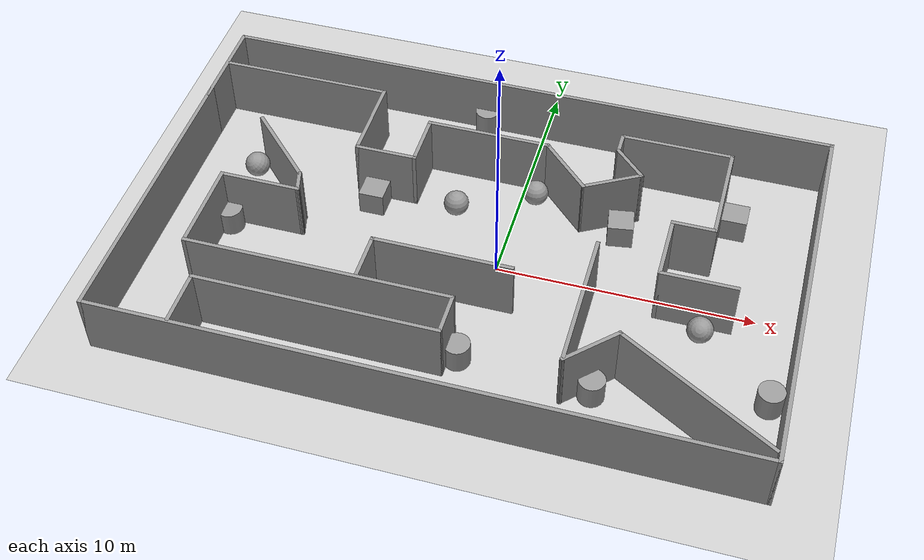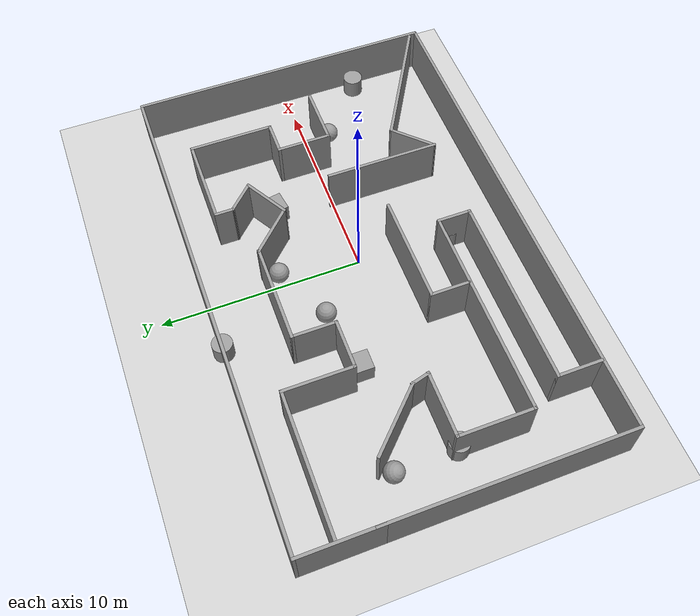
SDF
<sdf version="1.7">
 <world name="default">
  <light name="sun" type="directional">
   <pose>0 0 10 0 -0 0</pose>
   <diffuse>0.8 0.8 0.8 1</diffuse>
   <specular>0.2 0.2 0.2 1</specular>
   <attenuation>
    <range>1000</range>
    <constant>0.9</constant>
    <linear>0.01</linear>
    <quadratic>0.001</quadratic>
   </attenuation>
   <direction>-0.5 0.1 -0.9</direction>
   <spot><inner_angle>0</inner_angle><outer_angle>0</outer_angle><falloff>0</falloff></spot>
  </light>
  <model name="ground_plane">
   <static>1</static>
   <link name="link">
    <collision name="collision">
     <geometry><plane><normal>0 0 1</normal><size>100 100</size></plane></geometry>
     <surface>
      <contact><collide_bitmask>65535</collide_bitmask></contact>
      <friction><ode><mu>100</mu><mu2>50</mu2></ode></friction>
     </surface>
    </collision>
    <visual name="visual">
     <cast_shadows>0</cast_shadows>
     <geometry><plane><normal>0 0 1</normal><size>100 100</size></plane></geometry>
     <material>
      <script><uri>file://media/materials/scripts/gazebo.material</uri><name>Gazebo/Grey</name></script>
     </material>
    </visual>
   </link>
  </model>
  <physics type="ode">
   <max_step_size>0.01</max_step_size>
   <real_time_factor>1</real_time_factor>
   <real_time_update_rate>100</real_time_update_rate>
  </physics>
  <gravity>0 0 -9.8</gravity>
  <magnetic_field>6e-06 2.3e-05 -4.2e-05</magnetic_field>
  <atmosphere type="adiabatic"/>
  <scene><ambient>0.4 0.4 0.4 1</ambient><background>0.7 0.7 0.7 1</background><shadows>1</shadows></scene>
  <spherical_coordinates>
   <surface_model>EARTH_WGS84</surface_model>
   <latitude_deg>0</latitude_deg>
   <longitude_deg>0</longitude_deg>
   <elevation>0</elevation>
   <heading_deg>0</heading_deg>
  </spherical_coordinates>
  <model name="best3">
   <pose>-0.875002 0.033163 0 0 -0 0</pose>
   <link name="Wall_1">
    <collision name="Wall_1_Collision">
     <geometry><box><size>12 0.15 2.5</size></box></geometry>
     <pose>0 0 1.25 0 -0 0</pose>
    </collision>
    <visual name="Wall_1_Visual">
     <pose>0 0 1.25 0 -0 0</pose>
     <geometry><box><size>12 0.15 2.5</size></box></geometry>
     <material>
      <script><uri>file://media/materials/scripts/gazebo.material</uri><name>Gazebo/Grey</name></script>
      <ambient>1 1 1 1</ambient>
     </material>
     <meta><layer>0</layer></meta>
    </visual>
    <pose>-12.425 -1.75 0 0 -0 -1.5708</pose>
   </link>
   <link name="Wall_10">
    <collision name="Wall_10_Collision">
     <geometry><box><size>2.25 0.15 2.5</size></box></geometry>
     <pose>0 0 1.25 0 -0 0</pose>
    </collision>
    <visual name="Wall_10_Visual">
     <pose>0 0 1.25 0 -0 0</pose>
     <geometry><box><size>2.25 0.15 2.5</size></box></geometry>
     <material>
      <script><uri>file://media/materials/scripts/gazebo.material</uri><name>Gazebo/Grey</name></script>
      <ambient>1 1 1 1</ambient>
     </material>
     <meta><layer>0</layer></meta>
    </visual>
    <pose>-3.19458 3.6088 0 0 -0 1.5708</pose>
   </link>
   <link name="Wall_11">
    <collision name="Wall_11_Collision">
     <geometry><box><size>5 0.15 2.5</size></box></geometry>
     <pose>0 0 1.25 0 -0 0</pose>
    </collision>
    <visual name="Wall_11_Visual">
     <pose>0 0 1.25 0 -0 0</pose>
     <geometry><box><size>5 0.15 2.5</size></box></geometry>
     <material>
      <script><uri>file://media/materials/scripts/gazebo.material</uri><name>Gazebo/Grey</name></script>
      <ambient>1 1 1 1</ambient>
     </material>
     <meta><layer>0</layer></meta>
    </visual>
    <pose>-0.769583 4.6588 0 0 -0 0</pose>
   </link>
   <link name="Wall_12">
    <collision name="Wall_12_Collision">
     <geometry><box><size>2.75 0.15 2.5</size></box></geometry>
     <pose>0 0 1.25 0 -0 0</pose>
    </collision>
    <visual name="Wall_12_Visual">
     <pose>0 0 1.25 0 -0 0</pose>
     <geometry><box><size>2.75 0.15 2.5</size></box></geometry>
     <material>
      <script><uri>file://media/materials/scripts/gazebo.material</uri><name>Gazebo/Grey</name></script>
      <ambient>1 1 1 1</ambient>
     </material>
     <meta><layer>0</layer></meta>
    </visual>
    <pose>2.57466 3.73956 0 0 -0 -0.785398</pose>
   </link>
   <link name="Wall_13">
    <collision name="Wall_13_Collision">
     <geometry><box><size>2.5 0.15 2.5</size></box></geometry>
     <pose>0 0 1.25 0 -0 0</pose>
    </collision>
    <visual name="Wall_13_Visual">
     <pose>0 0 1.25 0 -0 0</pose>
     <geometry><box><size>2.5 0.15 2.5</size></box></geometry>
     <material>
      <script><uri>file://media/materials/scripts/gazebo.material</uri><name>Gazebo/Grey</name></script>
      <ambient>1 1 1 1</ambient>
     </material>
     <meta><layer>0</layer></meta>
    </visual>
    <pose>4.51147 3.40782 0 0 -0 0.523599</pose>
   </link>
   <link name="Wall_14">
    <collision name="Wall_14_Collision">
     <geometry><box><size>1.75 0.15 2.5</size></box></geometry>
     <pose>0 0 1.25 0 -0 0</pose>
    </collision>
    <visual name="Wall_14_Visual">
     <pose>0 0 1.25 0 -0 0</pose>
     <geometry><box><size>1.75 0.15 2.5</size></box></geometry>
     <material>
      <script><uri>file://media/materials/scripts/gazebo.material</uri><name>Gazebo/Grey</name></script>
      <ambient>1 1 1 1</ambient>
     </material>
     <meta><layer>0</layer></meta>
    </visual>
    <pose>4.96337 4.561 0 0 -0 2.35619</pose>
   </link>
   <link name="Wall_15">
    <collision name="Wall_15_Collision">
     <geometry><box><size>1 0.15 2.5</size></box></geometry>
     <pose>0 0 1.25 0 -0 0</pose>
    </collision>
    <visual name="Wall_15_Visual">
     <pose>0 0 1.25 0 -0 0</pose>
     <geometry><box><size>1 0.15 2.5</size></box></geometry>
     <material>
      <script><uri>file://media/materials/scripts/gazebo.material</uri><name>Gazebo/Grey</name></script>
      <ambient>1 1 1 1</ambient>
     </material>
     <meta><layer>0</layer></meta>
    </visual>
    <pose>4.39768 5.55169 0 0 -0 1.5708</pose>
   </link>
   <link name="Wall_16">
    <collision name="Wall_16_Collision">
     <geometry><box><size>4.5 0.15 2.5</size></box></geometry>
     <pose>0 0 1.25 0 -0 0</pose>
    </collision>
    <visual name="Wall_16_Visual">
     <pose>0 0 1.25 0 -0 0</pose>
     <geometry><box><size>4.5 0.15 2.5</size></box></geometry>
     <material>
      <script><uri>file://media/materials/scripts/gazebo.material</uri><name>Gazebo/Grey</name></script>
      <ambient>1 1 1 1</ambient>
     </material>
     <meta><layer>0</layer></meta>
    </visual>
    <pose>6.57268 5.97669 0 0 -0 0</pose>
   </link>
   <link name="Wall_17">
    <collision name="Wall_17_Collision">
     <geometry><box><size>4.25 0.15 2.5</size></box></geometry>
     <pose>0 0 1.25 0 -0 0</pose>
    </collision>
    <visual name="Wall_17_Visual">
     <pose>0 0 1.25 0 -0 0</pose>
     <geometry><box><size>4.25 0.15 2.5</size></box></geometry>
     <material>
      <script><uri>file://media/materials/scripts/gazebo.material</uri><name>Gazebo/Grey</name></script>
      <ambient>1 1 1 1</ambient>
     </material>
     <meta><layer>0</layer></meta>
    </visual>
    <pose>8.74768 3.92669 0 0 -0 -1.5708</pose>
   </link>
   <link name="Wall_18">
    <collision name="Wall_18_Collision">
     <geometry><box><size>1.75 0.15 2.5</size></box></geometry>
     <pose>0 0 1.25 0 -0 0</pose>
    </collision>
    <visual name="Wall_18_Visual">
     <pose>0 0 1.25 0 -0 0</pose>
     <geometry><box><size>1.75 0.15 2.5</size></box></geometry>
     <material>
      <script><uri>file://media/materials/scripts/gazebo.material</uri><name>Gazebo/Grey</name></script>
      <ambient>1 1 1 1</ambient>
     </material>
     <meta><layer>0</layer></meta>
    </visual>
    <pose>7.94768 1.87669 0 0 -0 3.14159</pose>
   </link>
   <link name="Wall_19">
    <collision name="Wall_19_Collision">
     <geometry><box><size>2.75 0.15 2.5</size></box></geometry>
     <pose>0 0 1.25 0 -0 0</pose>
    </collision>
    <visual name="Wall_19_Visual">
     <pose>0 0 1.25 0 -0 0</pose>
     <geometry><box><size>2.75 0.15 2.5</size></box></geometry>
     <material>
      <script><uri>file://media/materials/scripts/gazebo.material</uri><name>Gazebo/Grey</name></script>
      <ambient>1 1 1 1</ambient>
     </material>
     <meta><layer>0</layer></meta>
    </visual>
    <pose>7.14768 0.576691 0 0 -0 -1.5708</pose>
   </link>
   <link name="Wall_2">
    <collision name="Wall_2_Collision">
     <geometry><box><size>25 0.15 2.5</size></box></geometry>
     <pose>0 0 1.25 0 -0 0</pose>
    </collision>
    <visual name="Wall_2_Visual">
     <pose>0 0 1.25 0 -0 0</pose>
     <geometry><box><size>25 0.15 2.5</size></box></geometry>
     <material>
      <script><uri>file://media/materials/scripts/gazebo.material</uri><name>Gazebo/Grey</name></script>
      <ambient>1 1 1 1</ambient>
     </material>
     <meta><layer>0</layer></meta>
    </visual>
    <pose>-0 -7.675 0 0 -0 0</pose>
   </link>
   <link name="Wall_20">
    <collision name="Wall_20_Collision">
     <geometry><box><size>3 0.15 2.5</size></box></geometry>
     <pose>0 0 1.25 0 -0 0</pose>
    </collision>
    <visual name="Wall_20_Visual">
     <pose>0 0 1.25 0 -0 0</pose>
     <geometry><box><size>3 0.15 2.5</size></box></geometry>
     <material>
      <script><uri>file://media/materials/scripts/gazebo.material</uri><name>Gazebo/Grey</name></script>
      <ambient>1 1 1 1</ambient>
     </material>
     <meta><layer>0</layer></meta>
    </visual>
    <pose>8.57268 -0.723309 0 0 -0 0</pose>
   </link>
   <link name="Wall_22">
    <collision name="Wall_22_Collision">
     <geometry><box><size>2.25 0.15 2.5</size></box></geometry>
     <pose>0 0 1.25 0 -0 0</pose>
    </collision>
    <visual name="Wall_22_Visual">
     <pose>0 0 1.25 0 -0 0</pose>
     <geometry><box><size>2.25 0.15 2.5</size></box></geometry>
     <material>
      <script><uri>file://media/materials/scripts/gazebo.material</uri><name>Gazebo/Grey</name></script>
      <ambient>1 1 1 1</ambient>
     </material>
     <meta><layer>0</layer></meta>
    </visual>
    <pose>-9.07907 -6.54657 0 0 -0 1.5708</pose>
   </link>
   <link name="Wall_23">
    <collision name="Wall_23_Collision">
     <geometry><box><size>9.5 0.15 2.5</size></box></geometry>
     <pose>0 0 1.25 0 -0 0</pose>
    </collision>
    <visual name="Wall_23_Visual">
     <pose>0 0 1.25 0 -0 0</pose>
     <geometry><box><size>9.5 0.15 2.5</size></box></geometry>
     <material>
      <script><uri>file://media/materials/scripts/gazebo.material</uri><name>Gazebo/Grey</name></script>
      <ambient>1 1 1 1</ambient>
     </material>
     <meta><layer>0</layer></meta>
    </visual>
    <pose>-4.40407 -5.49657 0 0 -0 0</pose>
   </link>
   <link name="Wall_24">
    <collision name="Wall_24_Collision">
     <geometry><box><size>1.75 0.15 2.5</size></box></geometry>
     <pose>0 0 1.25 0 -0 0</pose>
    </collision>
    <visual name="Wall_24_Visual">
     <pose>0 0 1.25 0 -0 0</pose>
     <geometry><box><size>1.75 0.15 2.5</size></box></geometry>
     <material>
      <script><uri>file://media/materials/scripts/gazebo.material</uri><name>Gazebo/Grey</name></script>
      <ambient>1 1 1 1</ambient>
     </material>
     <meta><layer>0</layer></meta>
    </visual>
    <pose>0.270925 -4.69657 0 0 -0 1.5708</pose>
   </link>
   <link name="Wall_25">
    <collision name="Wall_25_Collision">
     <geometry><box><size>10.5 0.15 2.5</size></box></geometry>
     <pose>0 0 1.25 0 -0 0</pose>
    </collision>
    <visual name="Wall_25_Visual">
     <pose>0 0 1.25 0 -0 0</pose>
     <geometry><box><size>10.5 0.15 2.5</size></box></geometry>
     <material>
      <script><uri>file://media/materials/scripts/gazebo.material</uri><name>Gazebo/Grey</name></script>
      <ambient>1 1 1 1</ambient>
     </material>
     <meta><layer>0</layer></meta>
    </visual>
    <pose>-4.90407 -3.89657 0 0 -0 3.14159</pose>
   </link>
   <link name="Wall_26">
    <collision name="Wall_26_Collision">
     <geometry><box><size>3.75 0.15 2.5</size></box></geometry>
     <pose>0 0 1.25 0 -0 0</pose>
    </collision>
    <visual name="Wall_26_Visual">
     <pose>0 0 1.25 0 -0 0</pose>
     <geometry><box><size>3.75 0.15 2.5</size></box></geometry>
     <material>
      <script><uri>file://media/materials/scripts/gazebo.material</uri><name>Gazebo/Grey</name></script>
      <ambient>1 1 1 1</ambient>
     </material>
     <meta><layer>0</layer></meta>
    </visual>
    <pose>-10.0791 -2.09657 0 0 -0 1.5708</pose>
   </link>
   <link name="Wall_27">
    <collision name="Wall_27_Collision">
     <geometry><box><size>3.25 0.15 2.5</size></box></geometry>
     <pose>0 0 1.25 0 -0 0</pose>
    </collision>
    <visual name="Wall_27_Visual">
     <pose>0 0 1.25 0 -0 0</pose>
     <geometry><box><size>3.25 0.15 2.5</size></box></geometry>
     <material>
      <script><uri>file://media/materials/scripts/gazebo.material</uri><name>Gazebo/Grey</name></script>
      <ambient>1 1 1 1</ambient>
     </material>
     <meta><layer>0</layer></meta>
    </visual>
    <pose>-8.52908 -0.296573 0 0 -0 0</pose>
   </link>
   <link name="Wall_28">
    <collision name="Wall_28_Collision">
     <geometry><box><size>1 0.15 2.5</size></box></geometry>
     <pose>0 0 1.25 0 -0 0</pose>
    </collision>
    <visual name="Wall_28_Visual">
     <pose>0 0 1.25 0 -0 0</pose>
     <geometry><box><size>1 0.15 2.5</size></box></geometry>
     <material>
      <script><uri>file://media/materials/scripts/gazebo.material</uri><name>Gazebo/Grey</name></script>
      <ambient>1 1 1 1</ambient>
     </material>
     <meta><layer>0</layer></meta>
    </visual>
    <pose>-7.08907 0.113946 0 0 -0 1.8326</pose>
   </link>
   <link name="Wall_29">
    <collision name="Wall_29_Collision">
     <geometry><box><size>3.75 0.15 2.5</size></box></geometry>
     <pose>0 0 1.25 0 -0 0</pose>
    </collision>
    <visual name="Wall_29_Visual">
     <pose>0 0 1.25 0 -0 0</pose>
     <geometry><box><size>3.75 0.15 2.5</size></box></geometry>
     <material>
      <script><uri>file://media/materials/scripts/gazebo.material</uri><name>Gazebo/Grey</name></script>
      <ambient>1 1 1 1</ambient>
     </material>
     <meta><layer>0</layer></meta>
    </visual>
    <pose>-8.47186 1.79726 0 0 -0 2.35619</pose>
   </link>
   <link name="Wall_3">
    <collision name="Wall_3_Collision">
     <geometry><box><size>15.5 0.15 2.5</size></box></geometry>
     <pose>0 0 1.25 0 -0 0</pose>
    </collision>
    <visual name="Wall_3_Visual">
     <pose>0 0 1.25 0 -0 0</pose>
     <geometry><box><size>15.5 0.15 2.5</size></box></geometry>
     <material>
      <script><uri>file://media/materials/scripts/gazebo.material</uri><name>Gazebo/Grey</name></script>
      <ambient>1 1 1 1</ambient>
     </material>
     <meta><layer>0</layer></meta>
    </visual>
    <pose>12.425 -0 0 0 -0 1.5708</pose>
   </link>
   <link name="Wall_31">
    <collision name="Wall_31_Collision">
     <geometry><box><size>7 0.15 2.5</size></box></geometry>
     <pose>0 0 1.25 0 -0 0</pose>
    </collision>
    <visual name="Wall_31_Visual">
     <pose>0 0 1.25 0 -0 0</pose>
     <geometry><box><size>7 0.15 2.5</size></box></geometry>
     <material>
      <script><uri>file://media/materials/scripts/gazebo.material</uri><name>Gazebo/Grey</name></script>
      <ambient>1 1 1 1</ambient>
     </material>
     <meta><layer>0</layer></meta>
    </visual>
    <pose>9.30787 -5.5799 0 0 -0 2.61799</pose>
   </link>
   <link name="Wall_32">
    <collision name="Wall_32_Collision">
     <geometry><box><size>2.5 0.15 2.5</size></box></geometry>
     <pose>0 0 1.25 0 -0 0</pose>
    </collision>
    <visual name="Wall_32_Visual">
     <pose>0 0 1.25 0 -0 0</pose>
     <geometry><box><size>2.5 0.15 2.5</size></box></geometry>
     <material>
      <script><uri>file://media/materials/scripts/gazebo.material</uri><name>Gazebo/Grey</name></script>
      <ambient>1 1 1 1</ambient>
     </material>
     <meta><layer>0</layer></meta>
    </visual>
    <pose>5.51089 -4.69825 0 0 -0 -2.35619</pose>
   </link>
   <link name="Wall_33">
    <collision name="Wall_33_Collision">
     <geometry><box><size>5.75 0.15 2.5</size></box></geometry>
     <pose>0 0 1.25 0 -0 0</pose>
    </collision>
    <visual name="Wall_33_Visual">
     <pose>0 0 1.25 0 -0 0</pose>
     <geometry><box><size>5.75 0.15 2.5</size></box></geometry>
     <material>
      <script><uri>file://media/materials/scripts/gazebo.material</uri><name>Gazebo/Grey</name></script>
      <ambient>1 1 1 1</ambient>
     </material>
     <meta><layer>0</layer></meta>
    </visual>
    <pose>4.68004 -2.7291 0 0 -0 1.5708</pose>
   </link>
   <link name="Wall_35">
    <collision name="Wall_35_Collision">
     <geometry><box><size>2 0.15 2.5</size></box></geometry>
     <pose>0 0 1.25 0 -0 0</pose>
    </collision>
    <visual name="Wall_35_Visual">
     <pose>0 0 1.25 0 -0 0</pose>
     <geometry><box><size>2 0.15 2.5</size></box></geometry>
     <material>
      <script><uri>file://media/materials/scripts/gazebo.material</uri><name>Gazebo/Grey</name></script>
      <ambient>1 1 1 1</ambient>
     </material>
     <meta><layer>0</layer></meta>
    </visual>
    <pose>-3.391 -2.8998 0 0 -0 1.5708</pose>
   </link>
   <link name="Wall_36">
    <collision name="Wall_36_Collision">
     <geometry><box><size>5.5 0.15 2.5</size></box></geometry>
     <pose>0 0 1.25 0 -0 0</pose>
    </collision>
    <visual name="Wall_36_Visual">
     <pose>0 0 1.25 0 -0 0</pose>
     <geometry><box><size>5.5 0.15 2.5</size></box></geometry>
     <material>
      <script><uri>file://media/materials/scripts/gazebo.material</uri><name>Gazebo/Grey</name></script>
      <ambient>1 1 1 1</ambient>
     </material>
     <meta><layer>0</layer></meta>
    </visual>
    <pose>-0.716003 -1.9748 0 0 -0 0</pose>
   </link>
   <link name="Wall_4">
    <collision name="Wall_4_Collision">
     <geometry><box><size>25 0.15 2.5</size></box></geometry>
     <pose>0 0 1.25 0 -0 0</pose>
    </collision>
    <visual name="Wall_4_Visual">
     <pose>0 0 1.25 0 -0 0</pose>
     <geometry><box><size>25 0.15 2.5</size></box></geometry>
     <material>
      <script><uri>file://media/materials/scripts/gazebo.material</uri><name>Gazebo/Grey</name></script>
      <ambient>1 1 1 1</ambient>
     </material>
     <meta><layer>0</layer></meta>
    </visual>
    <pose>-0 7.675 0 0 -0 3.14159</pose>
   </link>
   <link name="Wall_5">
    <collision name="Wall_5_Collision">
     <geometry><box><size>4 0.15 2.5</size></box></geometry>
     <pose>0 0 1.25 0 -0 0</pose>
    </collision>
    <visual name="Wall_5_Visual">
     <pose>0 0 1.25 0 -0 0</pose>
     <geometry><box><size>4 0.15 2.5</size></box></geometry>
     <material>
      <script><uri>file://media/materials/scripts/gazebo.material</uri><name>Gazebo/Grey</name></script>
      <ambient>1 1 1 1</ambient>
     </material>
     <meta><layer>0</layer></meta>
    </visual>
    <pose>-12.425 5.75 0 0 -0 -1.5708</pose>
   </link>
   <link name="Wall_7">
    <collision name="Wall_7_Collision">
     <geometry><box><size>7 0.15 2.5</size></box></geometry>
     <pose>0 0 1.25 0 -0 0</pose>
    </collision>
    <visual name="Wall_7_Visual">
     <pose>0 0 1.25 0 -0 0</pose>
     <geometry><box><size>7 0.15 2.5</size></box></geometry>
     <material>
      <script><uri>file://media/materials/scripts/gazebo.material</uri><name>Gazebo/Grey</name></script>
      <ambient>1 1 1 1</ambient>
     </material>
     <meta><layer>0</layer></meta>
    </visual>
    <pose>-8.96958 5.9088 0 0 -0 0</pose>
   </link>
   <link name="Wall_8">
    <collision name="Wall_8_Collision">
     <geometry><box><size>3.5 0.15 2.5</size></box></geometry>
     <pose>0 0 1.25 0 -0 0</pose>
    </collision>
    <visual name="Wall_8_Visual">
     <pose>0 0 1.25 0 -0 0</pose>
     <geometry><box><size>3.5 0.15 2.5</size></box></geometry>
     <material>
      <script><uri>file://media/materials/scripts/gazebo.material</uri><name>Gazebo/Grey</name></script>
      <ambient>1 1 1 1</ambient>
     </material>
     <meta><layer>0</layer></meta>
    </visual>
    <pose>-5.54458 4.2338 0 0 -0 -1.5708</pose>
   </link>
   <link name="Wall_9">
    <collision name="Wall_9_Collision">
     <geometry><box><size>2.5 0.15 2.5</size></box></geometry>
     <pose>0 0 1.25 0 -0 0</pose>
    </collision>
    <visual name="Wall_9_Visual">
     <pose>0 0 1.25 0 -0 0</pose>
     <geometry><box><size>2.5 0.15 2.5</size></box></geometry>
     <material>
      <script><uri>file://media/materials/scripts/gazebo.material</uri><name>Gazebo/Grey</name></script>
      <ambient>1 1 1 1</ambient>
     </material>
     <meta><layer>0</layer></meta>
    </visual>
    <pose>-4.36958 2.5588 0 0 -0 0</pose>
   </link>
   <static>1</static>
  </model>
  <model name="unit_sphere">
   <pose>0.544002 3.94683 0.5 0 -0 0</pose>
   <link name="link">
    <inertial>
     <mass>1</mass>
     <inertia><ixx>0.1</ixx><ixy>0</ixy><ixz>0</ixz><iyy>0.1</iyy><iyz>0</iyz><izz>0.1</izz></inertia>
    </inertial>
    <collision name="collision"><geometry><sphere><radius>0.5</radius></sphere></geometry></collision>
    <visual name="visual">
     <geometry><sphere><radius>0.5</radius></sphere></geometry>
     <material>
      <script><name>Gazebo/Grey</name><uri>file://media/materials/scripts/gazebo.material</uri></script>
     </material>
    </visual>
   </link>
  </model>
  <model name="unit_cylinder">
   <pose>-10.6997 -0.618491 0.499789 0.000422 0.000422 -1e-05</pose>
   <link name="link">
    <inertial>
     <mass>1</mass>
     <inertia><ixx>0.145833</ixx><ixy>0</ixy><ixz>0</ixz><iyy>0.145833</iyy><iyz>0</iyz><izz>0.125</izz></inertia>
    </inertial>
    <collision name="collision">
     <geometry><cylinder><radius>0.5</radius><length>1</length></cylinder></geometry>
    </collision>
    <visual name="visual">
     <geometry><cylinder><radius>0.5</radius><length>1</length></cylinder></geometry>
     <material>
      <script><name>Gazebo/Grey</name><uri>file://media/materials/scripts/gazebo.material</uri></script>
     </material>
    </visual>
   </link>
  </model>
  <model name="unit_box">
   <pose>-5.59204 2.01694 0.49907 -0 -0.0001 -3.3e-05</pose>
   <link name="link">
    <inertial>
     <mass>1</mass>
     <inertia>
      <ixx>0.166667</ixx>
      <ixy>0</ixy>
      <ixz>0</ixz>
      <iyy>0.166667</iyy>
      <iyz>0</iyz>
      <izz>0.166667</izz>
     </inertia>
    </inertial>
    <collision name="collision"><geometry><box><size>1 1 1</size></box></geometry></collision>
    <visual name="visual">
     <geometry><box><size>1 1 1</size></box></geometry>
     <material>
      <script><name>Gazebo/Grey</name><uri>file://media/materials/scripts/gazebo.material</uri></script>
     </material>
    </visual>
   </link>
  </model>
  <model name="unit_cylinder_0">
   <pose>-0.216725 -4.69924 0.499096 4.8e-05 4.8e-05 -8e-06</pose>
   <link name="link">
    <inertial>
     <mass>1</mass>
     <inertia><ixx>0.145833</ixx><ixy>0</ixy><ixz>0</ixz><iyy>0.145833</iyy><iyz>0</iyz><izz>0.125</izz></inertia>
    </inertial>
    <collision name="collision">
     <geometry><cylinder><radius>0.5</radius><length>1</length></cylinder></geometry>
    </collision>
    <visual name="visual">
     <geometry><cylinder><radius>0.5</radius><length>1</length></cylinder></geometry>
     <material>
      <script><name>Gazebo/Grey</name><uri>file://media/materials/scripts/gazebo.material</uri></script>
     </material>
    </visual>
   </link>
  </model>
  <model name="unit_sphere_0">
   <pose>8.07264 -1.27367 0.5 0.704354 -0 0</pose>
   <link name="link">
    <inertial>
     <mass>1</mass>
     <inertia><ixx>0.1</ixx><ixy>0</ixy><ixz>0</ixz><iyy>0.1</iyy><iyz>0</iyz><izz>0.1</izz></inertia>
    </inertial>
    <collision name="collision"><geometry><sphere><radius>0.5</radius></sphere></geometry></collision>
    <visual name="visual">
     <geometry><sphere><radius>0.5</radius></sphere></geometry>
     <material>
      <script><name>Gazebo/Grey</name><uri>file://media/materials/scripts/gazebo.material</uri></script>
     </material>
    </visual>
   </link>
  </model>
  <model name="unit_box_0">
   <pose>8.44772 4.48559 0.49967 0.00066 -0 -2.6e-05</pose>
   <link name="link">
    <inertial>
     <mass>1</mass>
     <inertia>
      <ixx>0.166667</ixx>
      <ixy>0</ixy>
      <ixz>0</ixz>
      <iyy>0.166667</iyy>
      <iyz>0</iyz>
      <izz>0.166667</izz>
     </inertia>
    </inertial>
    <collision name="collision"><geometry><box><size>1 1 1</size></box></geometry></collision>
    <visual name="visual">
     <geometry><box><size>1 1 1</size></box></geometry>
     <material>
      <script><name>Gazebo/Grey</name><uri>file://media/materials/scripts/gazebo.material</uri></script>
     </material>
    </visual>
   </link>
  </model>
  <model name="unit_cylinder_1">
   <pose>-2.46931 7.62217 0.499824 -0.000249 -0.000249 -5e-06</pose>
   <link name="link">
    <inertial>
     <mass>1</mass>
     <inertia><ixx>0.145833</ixx><ixy>0</ixy><ixz>0</ixz><iyy>0.145833</iyy><iyz>0</iyz><izz>0.125</izz></inertia>
    </inertial>
    <collision name="collision">
     <geometry><cylinder><radius>0.5</radius><length>1</length></cylinder></geometry>
    </collision>
    <visual name="visual">
     <geometry><cylinder><radius>0.5</radius><length>1</length></cylinder></geometry>
     <material>
      <script><name>Gazebo/Grey</name><uri>file://media/materials/scripts/gazebo.material</uri></script>
     </material>
    </visual>
   </link>
  </model>
  <model name="unit_sphere_1">
   <pose>-2.35673 2.53141 0.5 0 -0 0</pose>
   <link name="link">
    <inertial>
     <mass>1</mass>
     <inertia><ixx>0.1</ixx><ixy>0</ixy><ixz>0</ixz><iyy>0.1</iyy><iyz>0</iyz><izz>0.1</izz></inertia>
    </inertial>
    <collision name="collision"><geometry><sphere><radius>0.5</radius></sphere></geometry></collision>
    <visual name="visual">
     <geometry><sphere><radius>0.5</radius></sphere></geometry>
     <material>
      <script><name>Gazebo/Grey</name><uri>file://media/materials/scripts/gazebo.material</uri></script>
     </material>
    </visual>
   </link>
  </model>
  <model name="unit_cylinder_2">
   <pose>4.81406 -4.9501 0.49912 0 0 -4e-06</pose>
   <link name="link">
    <inertial>
     <mass>1</mass>
     <inertia><ixx>0.145833</ixx><ixy>0</ixy><ixz>0</ixz><iyy>0.145833</iyy><iyz>0</iyz><izz>0.125</izz></inertia>
    </inertial>
    <collision name="collision">
     <geometry><cylinder><radius>0.5</radius><length>1</length></cylinder></geometry>
    </collision>
    <visual name="visual">
     <geometry><cylinder><radius>0.5</radius><length>1</length></cylinder></geometry>
     <material>
      <script><name>Gazebo/Grey</name><uri>file://media/materials/scripts/gazebo.material</uri></script>
     </material>
    </visual>
   </link>
  </model>
  <model name="unit_sphere_2">
   <pose>-10.7927 2.45082 0.5 0.454571 -0.413736 -0.097002</pose>
   <link name="link">
    <inertial>
     <mass>1</mass>
     <inertia><ixx>0.1</ixx><ixy>0</ixy><ixz>0</ixz><iyy>0.1</iyy><iyz>0</iyz><izz>0.1</izz></inertia>
    </inertial>
    <collision name="collision"><geometry><sphere><radius>0.5</radius></sphere></geometry></collision>
    <visual name="visual">
     <geometry><sphere><radius>0.5</radius></sphere></geometry>
     <material>
      <script><name>Gazebo/Grey</name><uri>file://media/materials/scripts/gazebo.material</uri></script>
     </material>
    </visual>
   </link>
  </model>
  <model name="unit_box_1">
   <pose>4.20821 2.92947 0.49912 0 -0 0.158981</pose>
   <link name="link">
    <inertial>
     <mass>1</mass>
     <inertia>
      <ixx>0.166667</ixx>
      <ixy>0</ixy>
      <ixz>0</ixz>
      <iyy>0.166667</iyy>
      <iyz>0</iyz>
      <izz>0.166667</izz>
     </inertia>
    </inertial>
    <collision name="collision"><geometry><box><size>1 1 1</size></box></geometry></collision>
    <visual name="visual">
     <geometry><box><size>1 1 1</size></box></geometry>
     <material>
      <script><name>Gazebo/Grey</name><uri>file://media/materials/scripts/gazebo.material</uri></script>
     </material>
    </visual>
   </link>
  </model>
  <model name="unit_cylinder_3">
   <pose>10.9749 -3.75522 0.499096 4.8e-05 4.8e-05 -1e-06</pose>
   <link name="link">
    <inertial>
     <mass>1</mass>
     <inertia><ixx>0.145833</ixx><ixy>0</ixy><ixz>0</ixz><iyy>0.145833</iyy><iyz>0</iyz><izz>0.125</izz></inertia>
    </inertial>
    <collision name="collision">
     <geometry><cylinder><radius>0.5</radius><length>1</length></cylinder></geometry>
    </collision>
    <visual name="visual">
     <geometry><cylinder><radius>0.5</radius><length>1</length></cylinder></geometry>
     <material>
      <script><name>Gazebo/Grey</name><uri>file://media/materials/scripts/gazebo.material</uri></script>
     </material>
    </visual>
   </link>
  </model>
 </world>
</sdf>
